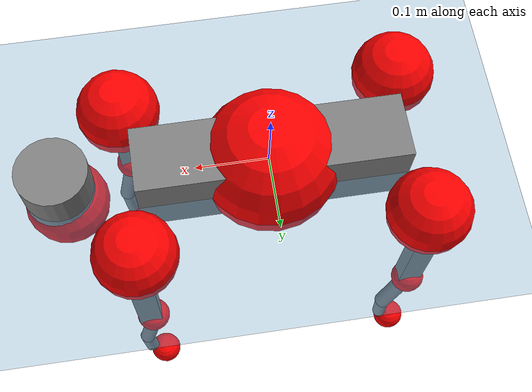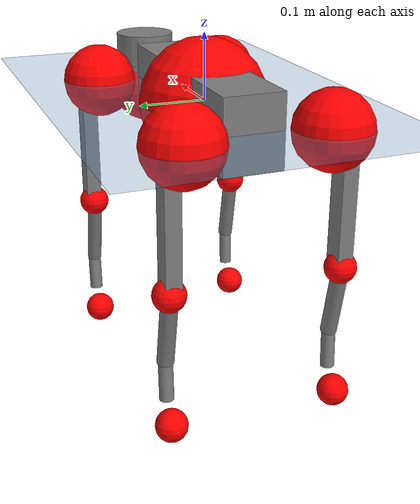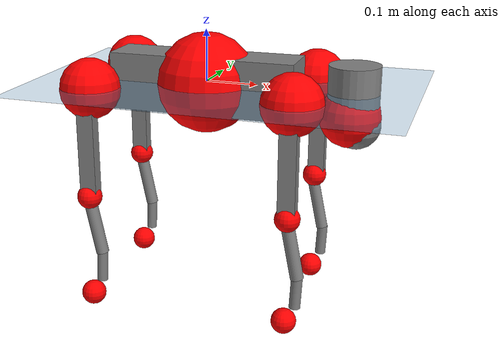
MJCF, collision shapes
<mujoco model="go2">
  <compiler angle="radian" assetdir="assets" balanceinertia="true" inertiafromgeom="false"/>

  <option timestep="0.005" density="1.2" viscosity="2e-05"/>

  <size nkey="1"/>

  <visual>
    <quality shadowsize="8192"/>
    <map shadowclip="0.5"/>
  </visual>

  <default>
    <default class="/">
      <geom contype="0" conaffinity="0" group="1" solref="-1000 -80"/>
      <site size="0.01 0.005 0.005" group="5"/>
      <general forcelimited="true" biastype="affine" gainprm="20" biasprm="0 -20 -0.5"/>
      <default class="go2">
        <joint armature="0.01" damping="0.01" frictionloss="0.2"/>
        <geom condim="1" margin="0.001"/>
        <default class="visual">
          <geom type="mesh" group="2"/>
        </default>
        <default class="collision">
          <geom group="3"/>
          <default class="foot">
            <geom size="0.022 0 0" condim="6" priority="1" friction="0.8 0.02 0.01" solimp="0.015 1 0.022"/>
          </default>
        </default>
        <default class="reward_collision_sphere">
          <geom group="5" rgba="1 0 0 1"/>
        </default>
      </default>
    </default>
  </default>

  <asset>
    <texture type="skybox" colorspace="auto" name="//unnamed_texture_0" builtin="gradient" rgb1="0.95 0.95 0.95" rgb2="0.95 0.95 0.95" width="100" height="600"/>
    <texture type="2d" colorspace="auto" name="texplane" builtin="checker" rgb1="0.345 0.575 0.748" rgb2="0.345 0.575 0.748" markrgb="1 1 1" width="512" height="512"/>
    <material name="MatPlane" class="/" texture="texplane" texuniform="true" texrepeat="2 2" specular="0.9"/>
    <material name="metal" class="/" rgba="0.9 0.95 0.95 1"/>
    <material name="black" class="/" rgba="0 0 0 1"/>
    <material name="white" class="/"/>
    <material name="gray" class="/" rgba="0.671705 0.692426 0.77427 1"/>
    <mesh name="base_0" class="/" file="base_0.obj"/>
    <mesh name="base_1" class="/" file="base_1.obj"/>
    <mesh name="base_2" class="/" file="base_2.obj"/>
    <mesh name="base_3" class="/" file="base_3.obj"/>
    <mesh name="base_4" class="/" file="base_4.obj"/>
    <mesh name="hip_0" class="/" file="hip_0.obj"/>
    <mesh name="hip_1" class="/" file="hip_1.obj"/>
    <mesh name="thigh_0" class="/" file="thigh_0.obj"/>
    <mesh name="thigh_1" class="/" file="thigh_1.obj"/>
    <mesh name="thigh_mirror_0" class="/" file="thigh_mirror_0.obj"/>
    <mesh name="thigh_mirror_1" class="/" file="thigh_mirror_1.obj"/>
    <mesh name="calf_0" class="/" file="calf_0.obj"/>
    <mesh name="calf_1" class="/" file="calf_1.obj"/>
    <mesh name="calf_mirror_0" class="/" file="calf_mirror_0.obj"/>
    <mesh name="calf_mirror_1" class="/" file="calf_mirror_1.obj"/>
    <mesh name="foot" class="/" file="foot.obj"/>
  </asset>

  <worldbody>
    <geom name="floor" class="/" size="100 100 0.125" type="plane" group="0" material="MatPlane"/>
    <light name="toplight_shadow" class="/" pos="0 0 5" dir="0.0990148 0.0990148 -0.990148" type="directional" ambient="0.04 0.04 0.04" diffuse="0.55 0.55 0.55" specular="0.12 0.12 0.12"/>
    <light name="toplight_fill" class="/" pos="0 0 5" dir="0.0990148 0.0990148 -0.990148" type="directional" castshadow="false" ambient="0.04 0.04 0.04" diffuse="0.3 0.3 0.3" specular="0.08 0.08 0.08"/>
    <body name="trunk" childclass="go2" pos="-0.000858432 0.0014628 -0.00225119" quat="1 0.000424877 -0.000556966 0.000248908">
      <inertial pos="0.0186901 0.00179042 -0.0051455" quat="-0.000773665 0.713764 -0.00188843 0.700383" mass="6.26465" diaginertia="0.103818 0.0650219 0.0203866"/>
      <joint name="//unnamed_joint_0" type="free" armature="0" damping="0" frictionloss="0"/>
      <geom name="//unnamed_geom_1" class="visual" material="black" mesh="base_0"/>
      <geom name="//unnamed_geom_2" class="visual" material="black" mesh="base_1"/>
      <geom name="//unnamed_geom_3" class="visual" material="black" mesh="base_2"/>
      <geom name="//unnamed_geom_4" class="visual" material="white" mesh="base_3"/>
      <geom name="//unnamed_geom_5" class="visual" material="gray" mesh="base_4"/>
      <geom name="trunk_1" class="collision" size="0.18085 0.044948 0.0548029" type="box"/>
      <geom name="trunk_2" class="collision" size="0.0480728 0.0432655" pos="0.283708 0 0.00967377" type="cylinder"/>
      <geom name="trunk_3" class="collision" size="0.0451884" pos="0.291671 0 -0.0580426"/>
      <geom name="//unnamed_geom_9" class="reward_collision_sphere" size="0.0961455"/>
      <geom name="//unnamed_geom_10" class="reward_collision_sphere" size="0.0576873" pos="0.27873 0 -0.043532"/>
      <site name="imu" pos="-0.0154991 0.0162538 0.0275048" size="0.00961455"/>
      <camera name="track" pos="0 -1.84305 0" quat="0.707107 0.707107 0 0" mode="trackcom"/>
      <camera name="ego_camera" pos="0.310585 0 0.043532" quat="-0.5 -0.5 0.5 0.5"/>
      <body name="FL_hip" pos="0.192316 0.0428554 -0.00203996" quat="0.999999 -0.00109599 -0.0004811 0.00065777">
        <inertial pos="-0.00758546 0.00225897 -0.00270172" quat="0.498058 0.4963 0.507133 0.498438" mass="0.59101" diaginertia="0.000843733 0.000385403 0.000408646"/>
        <joint name="FL_hip_joint" pos="0 0 0" axis="0.999998 -0.0018566 0.000804075" range="-1.07757 1.05182" armature="0.00983985" damping="0.021637" frictionloss="0.177047"/>
        <geom name="//unnamed_geom_11" class="visual" material="metal" mesh="hip_0"/>
        <geom name="//unnamed_geom_12" class="visual" material="gray" mesh="hip_1"/>
        <geom name="//unnamed_geom_13" class="collision" size="0.0442269 0.0192291" pos="0 0.0737218 0" quat="0.707107 0.707107 0 0" type="cylinder"/>
        <geom name="//unnamed_geom_14" class="reward_collision_sphere" size="0.0576873" pos="0 0.0645066 0"/>
        <body name="FL_thigh" pos="0.00117392 0.086732 -0.0019996" quat="1 0.00022894 8.85591e-05 0.00027369">
          <inertial pos="-0.00308873 -0.0188144 -0.0283562" quat="0.82246 0.0825685 -0.0199151 0.562446" mass="0.996504" diaginertia="0.00592982 0.00377073 0.000761034"/>
          <joint name="FL_thigh_joint" pos="0 0 0" axis="0.0139133 0.999691 -0.0205794" stiffness="0.011677" range="-1.57073 3.43211" armature="0.0086361" damping="0.0250289" frictionloss="0.19426"/>
          <geom name="//unnamed_geom_15" class="visual" material="metal" mesh="thigh_0"/>
          <geom name="//unnamed_geom_16" class="visual" material="gray" mesh="thigh_1"/>
          <geom name="//unnamed_geom_17" class="collision" size="0.102395 0.0117778 0.0163447" pos="0 0 -0.103026" quat="0.707107 0 0.707107 0" type="box"/>
          <body name="FL_calf" pos="-0.00336757 -0.00219074 -0.205277" quat="1 0.000100625 -2.95088e-05 -4.91962e-05">
            <inertial pos="0.00351905 -0.00253196 -0.135544" quat="0.71079 0.00179045 -0.00409072 0.703391" mass="0.208046" diaginertia="0.00145938 0.000933514 4.46091e-05"/>
            <joint name="FL_calf_joint" pos="0 0 0" axis="0.00264357 0.999986 0.00448586" stiffness="0.0200601" range="-2.6991 -0.819606" armature="0.0096657" damping="0.00595413" frictionloss="0.181196"/>
            <geom name="//unnamed_geom_18" class="visual" material="gray" mesh="calf_0"/>
            <geom name="//unnamed_geom_19" class="visual" material="black" mesh="calf_1"/>
            <geom name="FL_calf0" class="collision" size="0.0115375 0.0576873" pos="0.00796372 0 -0.0580426" quat="0.994493 0 -0.104807 0" type="cylinder"/>
            <geom name="//unnamed_geom_21" class="collision" size="0.010576 0.0312473" pos="0.0199093 0 -0.143172" quat="0.999688 0 0.0249974 0" type="cylinder"/>
            <geom name="//unnamed_geom_22" class="visual" pos="0 0 -0.206051" quat="1 0 0 0" material="black" mesh="foot"/>
            <geom name="FL_foot" class="foot" size="0.0235582" pos="-0.00199093 0 -0.206051"/>
            <geom name="//unnamed_geom_24" class="reward_collision_sphere" size="0.0240364"/>
            <geom name="//unnamed_geom_25" class="reward_collision_sphere" size="0.0240364" pos="-0.00199093 0 -0.206051"/>
            <site name="FL_foot" class="foot" pos="-0.00199093 0 -0.206051" size="0.00961455"/>
          </body>
        </body>
      </body>
      <body name="FR_hip" pos="0.194693 -0.0405307 -0.00195731" quat="1 2.84093e-05 -0.000163227 0.0001664">
        <inertial pos="-0.00786816 -0.00285643 -0.000870402" quat="0.499185 0.508319 0.502326 0.489995" mass="0.587591" diaginertia="0.000819331 0.000398504 0.000405978"/>
        <joint name="FR_hip_joint" pos="0 0 0" axis="0.999999 0.000947863 -0.000612218" stiffness="0.00966011" range="-1.0349 1.05091" armature="0.00944697" damping="0.00923869" frictionloss="0.218151"/>
        <geom name="//unnamed_geom_26" class="visual" pos="0 -3.99467e-10 -1.7134e-08" quat="4.63268e-05 1 0 0" material="metal" mesh="hip_0"/>
        <geom name="//unnamed_geom_27" class="visual" pos="0 -6.47583e-10 4.23788e-08" quat="4.63268e-05 1 0 0" material="gray" mesh="hip_1"/>
        <geom name="//unnamed_geom_28" class="collision" size="0.0442269 0.0192291" pos="0 -0.0737218 0" quat="0.707107 0.707107 0 0" type="cylinder"/>
        <geom name="//unnamed_geom_29" class="reward_collision_sphere" size="0.0576873" pos="0 -0.0645066 0"/>
        <body name="FR_thigh" pos="0.00215352 -0.0882006 0.000318591" quat="0.999999 -0.00125814 0.000193337 0.000559676">
          <inertial pos="-0.00366779 0.0207414 -0.0294586" quat="0.559823 -0.00746065 0.0771631 0.824978" mass="1.0325" diaginertia="0.00552333 0.00377784 0.000724528"/>
          <joint name="FR_thigh_joint" pos="0 0 0" axis="-0.00128784 -0.999999 -0.000997519" range="-3.45201 1.57282" armature="0.00960271" damping="0.0141433" frictionloss="0.21483"/>
          <geom name="//unnamed_geom_30" class="visual" material="metal" mesh="thigh_mirror_0"/>
          <geom name="//unnamed_geom_31" class="visual" material="gray" mesh="thigh_mirror_1"/>
          <geom name="//unnamed_geom_32" class="collision" size="0.102395 0.0117778 0.0163447" pos="0 0 -0.103026" quat="0.707107 0 0.707107 0" type="box"/>
          <body name="FR_calf" pos="0.000569077 0.000137867 -0.205595" quat="1 -1.75548e-06 -1.32185e-05 -3.59845e-05">
            <inertial pos="0.0083908 -0.000250866 -0.140318" quat="0.699673 0.0020782 -0.00432028 0.714447" mass="0.223237" diaginertia="0.00157086 0.000976727 4.7808e-05"/>
            <joint name="FR_calf_joint" pos="0 0 0" axis="0.014695 -0.999885 0.00372857" range="0.819532 2.67552" armature="0.00983944" damping="0.0098037" frictionloss="0.194509"/>
            <geom name="//unnamed_geom_33" class="visual" material="gray" mesh="calf_mirror_0"/>
            <geom name="//unnamed_geom_34" class="visual" material="black" mesh="calf_mirror_1"/>
            <geom name="FR_calf0" class="collision" size="0.0124989 0.0576873" pos="0.00995466 0 -0.0580426" quat="0.995004 0 -0.0998334 0" type="cylinder"/>
            <geom name="//unnamed_geom_36" class="collision" size="0.010576 0.0312473" pos="0.0199093 0 -0.143172" quat="0.999688 0 0.0249974 0" type="cylinder"/>
            <geom name="//unnamed_geom_37" class="visual" pos="0 0 -0.206051" quat="1 0 0 0" material="black" mesh="foot"/>
            <geom name="FR_foot" class="foot" size="0.0192332" pos="-0.00199093 0 -0.206051"/>
            <geom name="//unnamed_geom_39" class="reward_collision_sphere" size="0.0240364"/>
            <geom name="//unnamed_geom_40" class="reward_collision_sphere" size="0.0240364" pos="-0.00199093 0 -0.206051"/>
            <site name="FR_foot" class="foot" pos="-0.00199093 0 -0.206051" size="0.00961455"/>
          </body>
        </body>
      </body>
      <body name="RL_hip" pos="-0.194995 0.0399532 0.00253983" quat="1 0.000302457 -8.18421e-05 0.000214551">
        <inertial pos="0.00455108 0.00121733 0.00228882" quat="0.500204 0.498099 0.500468 0.501224" mass="0.583619" diaginertia="0.000844242 0.000384644 0.000402695"/>
        <joint name="RL_hip_joint" pos="0 0 0" axis="-0.999988 -0.000189045 0.00486246" stiffness="0.0130886" range="-1.10436 1.02188" armature="0.0097773" damping="0.00434063" frictionloss="0.179922"/>
        <geom name="//unnamed_geom_41" class="visual" pos="-2.44693e-10 0 -4.79654e-08" quat="4.63268e-05 0 1 0" material="metal" mesh="hip_0"/>
        <geom name="//unnamed_geom_42" class="visual" pos="-3.96676e-10 0 -4.25384e-08" quat="4.63268e-05 0 1 0" material="gray" mesh="hip_1"/>
        <geom name="//unnamed_geom_43" class="collision" size="0.0442269 0.0192291" pos="0 0.0737218 0" quat="0.707107 0.707107 0 0" type="cylinder"/>
        <geom name="//unnamed_geom_44" class="reward_collision_sphere" size="0.0576873" pos="0 0.0645066 0"/>
        <body name="RL_thigh" pos="-0.000438037 0.0840994 0.00200861" quat="1 3.79164e-05 -1.15262e-05 -1.09242e-05">
          <inertial pos="-0.00274336 -0.0192848 -0.0284835" quat="0.827246 0.0891269 -0.0218115 0.554297" mass="1.03125" diaginertia="0.00614841 0.00397086 0.000782456"/>
          <joint name="RL_thigh_joint" pos="0 0 0" axis="-0.000913981 0.999996 -0.00267595" range="-0.497675 4.4947" armature="0.010907" damping="0.00742286" frictionloss="0.20103"/>
          <geom name="//unnamed_geom_45" class="visual" material="metal" mesh="thigh_0"/>
          <geom name="//unnamed_geom_46" class="visual" material="gray" mesh="thigh_1"/>
          <geom name="//unnamed_geom_47" class="collision" size="0.102395 0.0117778 0.0163447" pos="0 0 -0.103026" quat="0.707107 0 0.707107 0" type="box"/>
          <body name="RL_calf" pos="-0.00108636 0.0018745 -0.206861" quat="1 -3.11385e-05 4.50461e-05 -0.000241055">
            <inertial pos="0.00808666 -0.0023046 -0.135572" quat="0.710674 0.00154011 -0.0045043 0.703506" mass="0.211753" diaginertia="0.00144911 0.000998612 4.32454e-05"/>
            <joint name="RL_calf_joint" pos="0 0 0" axis="0.00603613 0.999978 -0.00270042" stiffness="0.0181713" range="-2.67113 -0.835485" armature="0.0101069" damping="0" frictionloss="0.20971"/>
            <geom name="//unnamed_geom_48" class="visual" material="gray" mesh="calf_0"/>
            <geom name="//unnamed_geom_49" class="visual" material="black" mesh="calf_1"/>
            <geom name="RL_calf0" class="collision" size="0.0124989 0.0576873" pos="0.00995466 0 -0.0580426" quat="0.995004 0 -0.0998334 0" type="cylinder"/>
            <geom name="//unnamed_geom_51" class="collision" size="0.010576 0.0312473" pos="0.0199093 0 -0.143172" quat="0.999688 0 0.0249974 0" type="cylinder"/>
            <geom name="//unnamed_geom_52" class="visual" pos="0 0 -0.206051" quat="1 0 0 0" material="black" mesh="foot"/>
            <geom name="RL_foot" class="foot" size="0.0222849" pos="-0.00199093 0 -0.206051"/>
            <geom name="//unnamed_geom_54" class="reward_collision_sphere" size="0.0240364"/>
            <geom name="//unnamed_geom_55" class="reward_collision_sphere" size="0.0240364" pos="-0.00199093 0 -0.206051"/>
            <site name="RL_foot" class="foot" pos="-0.00199093 0 -0.206051" size="0.00961455"/>
          </body>
        </body>
      </body>
      <body name="RR_hip" pos="-0.192356 -0.0457803 -0.00146315" quat="0.999999 0.000514128 0.00117675 0.000722358">
        <inertial pos="0.00470415 -0.00269156 -0.0010092" quat="0.49899 0.497965 0.497921 0.505089" mass="0.642567" diaginertia="0.000873105 0.000398898 0.000422364"/>
        <joint name="RR_hip_joint" pos="0 0 0" axis="-0.999931 -0.0110212 0.00394838" range="-0.994705 1.04941" armature="0.00866928" damping="0.0184461" frictionloss="0.218009"/>
        <geom name="//unnamed_geom_56" class="visual" pos="2.42132e-10 -3.99467e-10 -3.08314e-08" quat="2.14617e-09 4.63268e-05 4.63268e-05 -1" material="metal" mesh="hip_0"/>
        <geom name="//unnamed_geom_57" class="visual" pos="4.03007e-10 -6.47583e-10 -8.49173e-08" quat="2.14617e-09 4.63268e-05 4.63268e-05 -1" material="gray" mesh="hip_1"/>
        <geom name="//unnamed_geom_58" class="collision" size="0.0442269 0.0192291" pos="0 -0.0737218 0" quat="0.707107 0.707107 0 0" type="cylinder"/>
        <geom name="//unnamed_geom_59" class="reward_collision_sphere" size="0.0576873" pos="0 -0.0645066 0"/>
        <body name="RR_thigh" pos="0.00252079 -0.0887272 -0.00212997" quat="1 0.000295169 -4.55609e-05 -0.000164678">
          <inertial pos="-0.00516063 0.0214195 -0.0315578" quat="0.552944 -0.0210347 0.0854082 0.828562" mass="1.02899" diaginertia="0.00601264 0.00385959 0.000745795"/>
          <joint name="RR_thigh_joint" pos="0 0 0" axis="-0.000272207 -1 0.000400001" range="-4.49942 0.499262" armature="0.00933837" damping="0.0186074" frictionloss="0.195208"/>
          <geom name="//unnamed_geom_60" class="visual" material="metal" mesh="thigh_mirror_0"/>
          <geom name="//unnamed_geom_61" class="visual" material="gray" mesh="thigh_mirror_1"/>
          <geom name="//unnamed_geom_62" class="collision" size="0.102395 0.0117778 0.0163447" pos="0 0 -0.103026" quat="0.707107 0 0.707107 0" type="box"/>
          <body name="RR_calf" pos="-0.00213452 -0.000783372 -0.205299" quat="1 0.00068478 -0.000144009 4.64445e-05">
            <inertial pos="0.0088632 0.000482499 -0.137074" quat="0.701895 -0.0116239 -0.00130596 0.712184" mass="0.209905" diaginertia="0.0013943 0.000952004 4.4338e-05"/>
            <joint name="RR_calf_joint" pos="0 0 0" axis="0.000131855 -1 -0.000847714" range="0.835888 2.76051" armature="0.00856383" damping="0.0278597" frictionloss="0.201041"/>
            <geom name="//unnamed_geom_63" class="visual" material="gray" mesh="calf_mirror_0"/>
            <geom name="//unnamed_geom_64" class="visual" material="black" mesh="calf_mirror_1"/>
            <geom name="RR_calf0" class="collision" size="0.0124989 0.0576873" pos="0.00995466 0 -0.0580426" quat="0.995004 0 -0.0998334 0" type="cylinder"/>
            <geom name="//unnamed_geom_66" class="collision" size="0.010576 0.0312473" pos="0.0199093 0 -0.143172" quat="0.999688 0 0.0249974 0" type="cylinder"/>
            <geom name="//unnamed_geom_67" class="visual" pos="0 0 -0.206051" quat="1 0 0 0" material="black" mesh="foot"/>
            <geom name="RR_foot" class="foot" size="0.01669" pos="-0.00199093 0 -0.206051"/>
            <geom name="//unnamed_geom_69" class="reward_collision_sphere" size="0.0240364"/>
            <geom name="//unnamed_geom_70" class="reward_collision_sphere" size="0.0240364" pos="-0.00199093 0 -0.206051"/>
            <site name="RR_foot" class="foot" pos="-0.00199093 0 -0.206051" size="0.00961455"/>
          </body>
        </body>
      </body>
    </body>
  </worldbody>

  <contact>
    <pair class="/" geom1="floor" geom2="FL_foot" name="//unnamed_contact_0"/>
    <pair class="/" geom1="floor" geom2="FR_foot" name="//unnamed_contact_1"/>
    <pair class="/" geom1="floor" geom2="RL_foot" name="//unnamed_contact_2"/>
    <pair class="/" geom1="floor" geom2="RR_foot" name="//unnamed_contact_3"/>
  </contact>

  <actuator>
    <general name="FL_hip" class="/" joint="FL_hip_joint" forcerange="-24.2016 24.2016" gainprm="18.144" biasprm="0 -18.144 -0.473235"/>
    <general name="FL_thigh" class="/" joint="FL_thigh_joint" forcerange="-22.2582 22.2582" gainprm="18.144" biasprm="0 -18.144 -0.473235"/>
    <general name="FL_calf" class="/" joint="FL_calf_joint" forcerange="-45.9961 45.9961" gainprm="18.144" biasprm="0 -18.144 -0.473235"/>
    <general name="FR_hip" class="/" joint="FR_hip_joint" forcerange="-23.3147 23.3147" gainprm="18.144" biasprm="0 -18.144 -0.473235"/>
    <general name="FR_thigh" class="/" joint="FR_thigh_joint" forcerange="-24.1928 24.1928" gainprm="18.144" biasprm="0 -18.144 -0.473235"/>
    <general name="FR_calf" class="/" joint="FR_calf_joint" forcerange="-36.9709 36.9709" gainprm="18.144" biasprm="0 -18.144 -0.473235"/>
    <general name="RL_hip" class="/" joint="RL_hip_joint" forcerange="-21.2742 21.2742" gainprm="18.144" biasprm="0 -18.144 -0.473235"/>
    <general name="RL_thigh" class="/" joint="RL_thigh_joint" forcerange="-24.7929 24.7929" gainprm="18.144" biasprm="0 -18.144 -0.473235"/>
    <general name="RL_calf" class="/" joint="RL_calf_joint" forcerange="-43.0602 43.0602" gainprm="18.144" biasprm="0 -18.144 -0.473235"/>
    <general name="RR_hip" class="/" joint="RR_hip_joint" forcerange="-23.1995 23.1995" gainprm="18.144" biasprm="0 -18.144 -0.473235"/>
    <general name="RR_thigh" class="/" joint="RR_thigh_joint" forcerange="-25.3428 25.3428" gainprm="18.144" biasprm="0 -18.144 -0.473235"/>
    <general name="RR_calf" class="/" joint="RR_calf_joint" forcerange="-43.6303 43.6303" gainprm="18.144" biasprm="0 -18.144 -0.473235"/>
  </actuator>

  <sensor>
    <gyro site="imu" name="imu_angular_velocity"/>
    <velocimeter site="imu" name="imu_linear_velocity"/>
    <framelinvel objtype="site" objname="FL_foot" name="FL_foot_global_linear_velocity"/>
    <framelinvel objtype="site" objname="FR_foot" name="FR_foot_global_linear_velocity"/>
    <framelinvel objtype="site" objname="RL_foot" name="RL_foot_global_linear_velocity"/>
    <framelinvel objtype="site" objname="RR_foot" name="RR_foot_global_linear_velocity"/>
  </sensor>

  <keyframe>
    <key name="home" qpos="0 0 0.325 1 0 0 0 0.1 0.8 -1.5 -0.1 -0.8 1.5 -0.1 0.8 -1.5 0.1 -0.8 1.5"/>
  </keyframe>
</mujoco>
